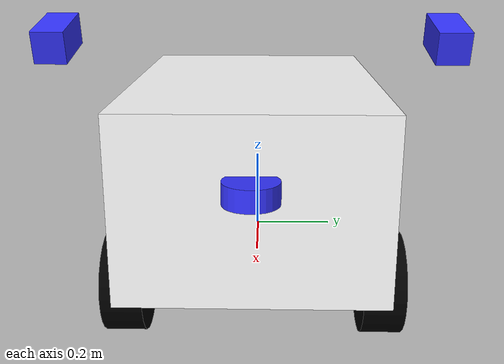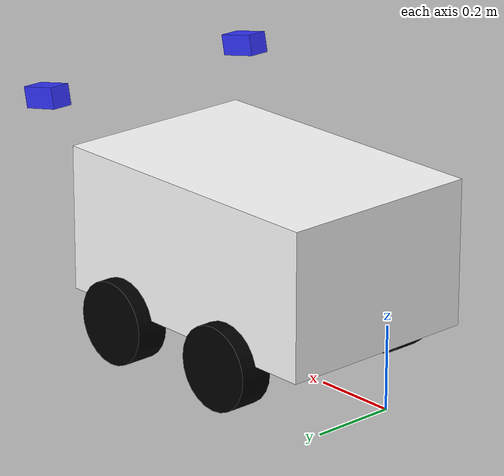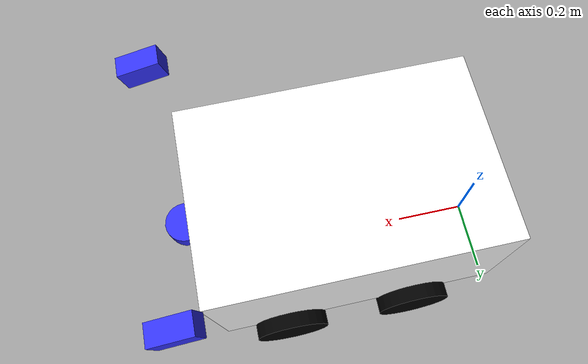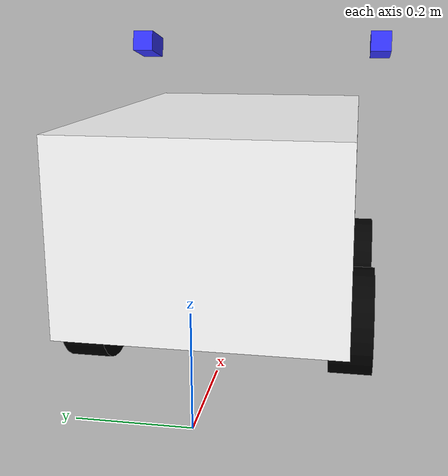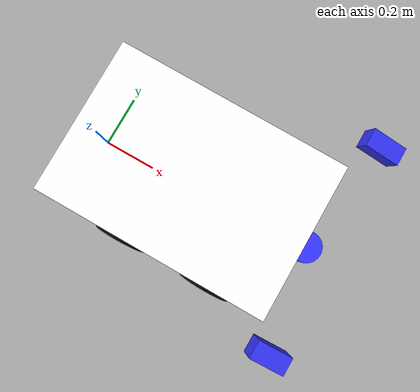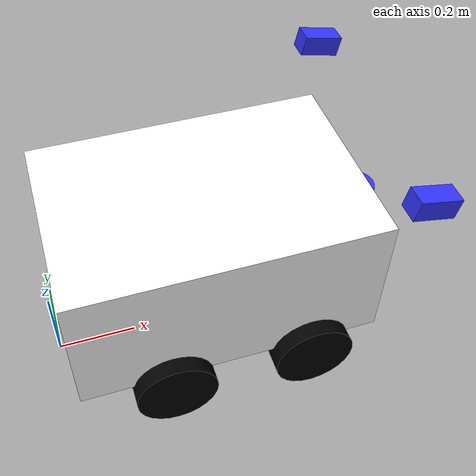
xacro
<?xml version="1.0"?>
<robot xmlns:xacro="http://www.ros.org/wiki/xacro"  name="robot">

    <xacro:include filename="rover_core.xacro"/>

    <xacro:include filename="gazebo_control.xacro"/>
    <!--xacro:include filename="ros_control.xacro"/-->

    <xacro:include filename="lidar.xacro"/>
    <xacro:include filename="distance_sensors.xacro"/>

</robot>

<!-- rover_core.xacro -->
<robot xmlns:xacro="http://www.ros.org/wiki/xacro">

<xacro:include filename="inertial_macros.xacro"/>

    <material name = "white">
        <color rgba= "1 1 1 1" />
    </material>

    <material name = "black">
        <color rgba= "0 0 0 1" />
    </material>

    <material name = "blue">
        <color rgba= ".2 .2 1 1" />
    </material>

    <link name="base_link"></link>

    <!-- BASE_FOOTPRINT LINK -->

    <!-- Assuming zed movement is negligable -->

    <joint name="base_footprint_joint" type="fixed">
        <parent link="base_link"/>
        <child link="base_footprint"/>
        <origin xyz="0 0 0" rpy="0 0 0"/>
    </joint>

    <link name="base_footprint">
    </link>

    <!-- CHASSIS LINK -->

    <joint name="chassis_joint" type="fixed">
        <parent link="base_link"/>
        <child link="chassis"/>
        <origin xyz="-0.1 0 0.1"/>
    </joint>

    <link name="chassis">
        <visual>
            <origin xyz=".5 0 .2"/>
            <geometry>
                <box size=".75 .5 0.35"/>
            </geometry>
            <material name="white"/>
        </visual>
        <collision>
            <origin xyz=".5 0 .2"/>
            <geometry>
                <box size=".75 .5 0.35"/>
            </geometry>
        </collision>
        <xacro:inertial_box mass="42" x="1" y="1" z=".5">
            <origin xyz=".5 0 .2" rpy="0 0 0"/>
        </xacro:inertial_box>
    </link>

    <gazebo reference="chassis">
        <material>Gazebo/White</material>
    </gazebo>

    <!-- LEFT DRIVE WHEEL 1 LINK -->

    <joint name="left_drive_wheel_1_joint" type="continuous">
        <parent link="base_link"/>
        <child link="left_drive_wheel_1_train"/>
        <origin xyz=".25 -.25 0.1" rpy="-${pi/2} 0 0"/>
        <axis xyz="0 0 1"/>
    </joint>

    <link name="left_drive_wheel_1_train">
        <visual>
            <geometry>
                <cylinder radius=".1" length=".08"/>
            </geometry>
            <material name="black"/>
        </visual>
        <collision>
            <geometry>
                <cylinder radius=".1" length=".08"/>
            </geometry>
        </collision>
        <xacro:inertial_cylinder mass="3" length=".08" radius=".1">
            <origin xyz="0 0 0" rpy="0 0 0"/>
        </xacro:inertial_cylinder>
    </link>

    <gazebo reference="left_drive_wheel_1_train">
        <material>Gazebo/Black</material>
    </gazebo>

    <!-- LEFT DRIVE WHEEL 3 LINK -->

    <joint name="left_drive_wheel_3_joint" type="fixed">
        <parent link="base_link"/>
        <child link="left_drive_wheel_3_train"/>
        <origin xyz=".6 -.25 0.1" rpy="-${pi/2} 0 0"/>
        <axis xyz="0 0 1"/>
    </joint>

    <link name="left_drive_wheel_3_train">
        <visual>
            <geometry>
                <cylinder radius=".1" length=".08"/>
            </geometry>
            <material name="black"/>
        </visual>
        <collision>
            <geometry>
                <cylinder radius=".1" length=".08"/>
            </geometry>
        </collision>
        <xacro:inertial_cylinder mass="3" length=".08" radius=".1">
            <origin xyz="0 0 0" rpy="0 0 0"/>
        </xacro:inertial_cylinder>
    </link>

    <gazebo reference="left_drive_wheel_3_train">
        <material>Gazebo/Black</material>
        <mu1 value="0.001"/>
        <mu2 value="0.001"/>
    </gazebo>

    <!-- RIGHT DRIVE WHEEL 1 LINK -->

    <joint name="right_drive_wheel_1_joint" type="continuous">
        <parent link="base_link"/>
        <child link="right_drive_wheel_1_train"/>
        <origin xyz=".25 .25 0.1" rpy="${pi/2} 0 0"/>
        <axis xyz="0 0 -1"/>
    </joint>

    <link name="right_drive_wheel_1_train">
        <visual>
            <geometry>
                <cylinder radius=".1" length=".08"/>
            </geometry>
            <material name="black"/>
        </visual>
        <collision>
            <geometry>
                <cylinder radius=".1" length=".08"/>
            </geometry>
        </collision>
        <xacro:inertial_cylinder mass="3" length=".08" radius=".1">
            <origin xyz="0 0 0" rpy="0 0 0"/>
        </xacro:inertial_cylinder>
    </link>

    <gazebo reference="right_drive_wheel_1_train">
        <material>Gazebo/Black</material>
    </gazebo>

    <!-- RIGHT DRIVE WHEEL 3 LINK -->

    <joint name="right_drive_wheel_3_joint" type="fixed">
        <parent link="base_link"/>
        <child link="right_drive_wheel_3_train"/>
        <origin xyz=".6 .25 0.1" rpy="${pi/2} 0 0"/>
        <axis xyz="0 0 -1"/>
    </joint>

    <link name="right_drive_wheel_3_train">
        <visual>
            <geometry>
                <cylinder radius=".1" length=".08"/>
            </geometry>
            <material name="black"/>
        </visual>
        <collision>
            <geometry>
                <cylinder radius=".1" length=".08"/>
            </geometry>
        </collision>
        <xacro:inertial_cylinder mass="3" length=".08" radius=".1">
            <origin xyz="0 0 0" rpy="0 0 0"/>
        </xacro:inertial_cylinder>
    </link>

    <gazebo reference="right_drive_wheel_3_train">
        <material>Gazebo/Black</material>
        <mu1 value="0.001"/>
        <mu2 value="0.001"/>
    </gazebo>

</robot>

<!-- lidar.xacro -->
<robot xmlns:xacro="http://www.ros.org/wiki/xacro" >

    <joint name="laser_joint" type="fixed">
        <parent link="chassis"/>
        <child link="laser_frame"/>
        <origin xyz=".90 0 0.25" rpy="0 0 0"/>
    </joint>

    <link name="laser_frame">
        <visual>
            <geometry>
                <cylinder radius="0.05" length="0.04"/>
            </geometry>
            <material name="blue"/>
        </visual>
        <collision>
            <geometry>
                <cylinder radius="0.05" length="0.04"/>
            </geometry>
        </collision>
        <xacro:inertial_cylinder mass="1" length="0.04" radius="0.05">
            <origin xyz="0 0 0" rpy="0 0 0"/>
        </xacro:inertial_cylinder>
    </link>

    <gazebo reference="laser_frame">
        <material>Gazebo/Blue</material>

        <sensor name="lidar" type="gpu_ray">
            <pose> 0 0 0 0 0 0 </pose>
            <visualize>true</visualize>
            <update_rate>10</update_rate>
            <ray>
                <scan>
                    <horizontal>
                        <samples>360</samples>
                        <min_angle>-1.71</min_angle>
                        <max_angle>1.71</max_angle>
                    </horizontal>
                </scan>
                <range>
                    <min>0.1</min>
                    <max>10</max>
                </range>
            </ray>
            <plugin name="gazebo_lidar" filename="libgazebo_ros_gpu_laser.so">
                <topicName>/lidar_scan</topicName>
                <frameName>laser_frame</frameName>
            </plugin>
        </sensor>
    </gazebo>

</robot>

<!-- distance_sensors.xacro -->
<robot xmlns:xacro="http://www.ros.org/wiki/xacro">

    <!-- LEFT DISTANCE SENSOR-->

   <joint name="distance_sensor_left_joint" type="fixed">
        <parent link="chassis"/>
        <child link="distance_sensor_left"/>
        <origin xyz=".9 -.3 .5" rpy="0 0.20943632679 0"/>
    </joint>

    <link name="distance_sensor_left">
        <visual>
            <geometry>
                <box size=".1 .05 0.05"/>
            </geometry>
            <material name="blue"/>
        </visual>
        <collision>
            <geometry>
                <box size=".05 .05 0.50"/>
            </geometry>
        </collision>
        <xacro:inertial_box mass=".1" x=".1" y=".05" z=".05">
            <origin xyz="0 0 0" rpy="0 0 0"/>
        </xacro:inertial_box>
    </link>

    <gazebo reference="distance_sensor_left">
        <material>Gazebo/Blue</material>

        <sensor name="left_distance_sensor" type="gpu_ray">
            <pose> 0 0 0 0 0 0 </pose>
            <visualize>true</visualize>
            <update_rate>10</update_rate>
            <ray>
                <scan>
                    <horizontal>
                        <samples>25</samples>
                        <min_angle>-0.139626</min_angle>
                        <max_angle>0.139626</max_angle>
                    </horizontal>
                </scan>
                <range>
                    <min>0.1</min>
                    <max>5</max>
                </range>
            </ray>
            <plugin name="gazebo_distance_sensor_left" filename="libgazebo_ros_gpu_laser.so">
                <topicName>/distance_left_scan</topicName>
                <frameName>distance_sensor_left</frameName>
            </plugin>
        </sensor>
    </gazebo>

    <!-- RIGHT DISTANCE SENSOR-->

   <joint name="distance_sensor_right_joint" type="fixed">
        <parent link="chassis"/>
        <child link="distance_sensor_right"/>
        <origin xyz=".9 .3 .5" rpy="0 0.20943632679 0"/>
    </joint>

    <link name="distance_sensor_right">
        <visual>
            <geometry>
                <box size=".1 .05 0.05"/>
            </geometry>
            <material name="blue"/>
        </visual>
        <collision>
            <geometry>
                <box size=".05 .05 0.50"/>
            </geometry>
        </collision>
        <xacro:inertial_box mass=".1" x=".1" y=".05" z=".05">
            <origin xyz="0 0 0" rpy="0 0 0"/>
        </xacro:inertial_box>
    </link>

    <gazebo reference="distance_sensor_right">
        <material>Gazebo/Blue</material>

        <sensor name="right_distance_sensor" type="gpu_ray">
            <pose> 0 0 0 0 0 0 </pose>
            <visualize>true</visualize>
            <update_rate>10</update_rate>
            <ray>
                <scan>
                    <horizontal>
                        <samples>25</samples>
                        <min_angle>-0.139626</min_angle>
                        <max_angle>0.139626</max_angle>
                    </horizontal>
                </scan>
                <range>
                    <min>0.1</min>
                    <max>5</max>
                </range>
            </ray>
            <plugin name="gazebo_distance_sensor_right" filename="libgazebo_ros_gpu_laser.so">
                <topicName>/distance_right_scan</topicName>
                <frameName>distance_sensor_right</frameName>
            </plugin>
        </sensor>
    </gazebo>
</robot>
